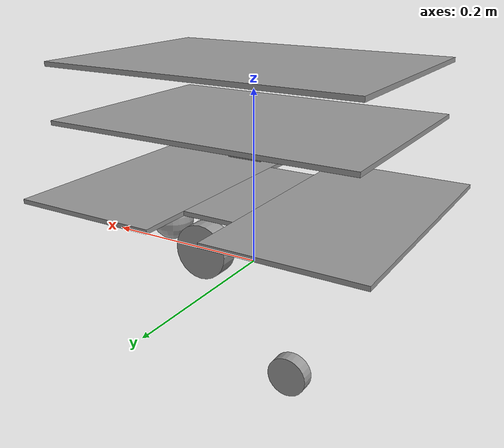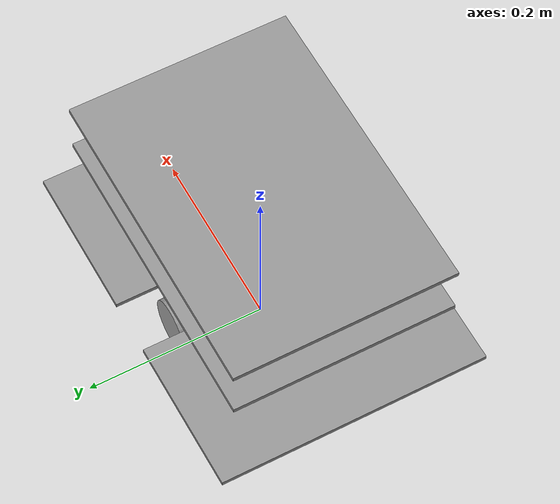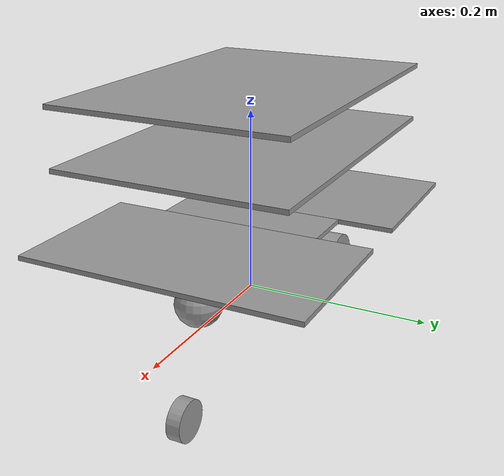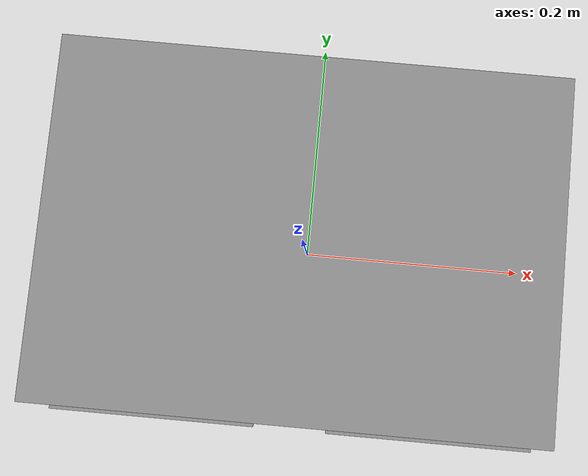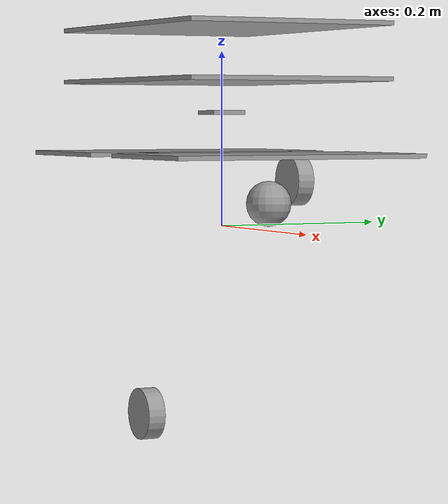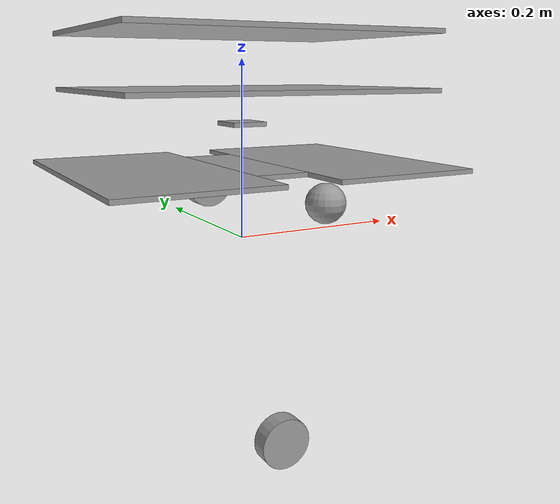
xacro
<?xml version="1.0"?>
<robot name="robot302" xmlns:xacro="http://www.ros.org/wiki/xacro">

  <gazebo reference="base_link">
    <material>Gazebo/Gray</material>
  </gazebo>
  <gazebo reference="left_wheel">
    <material>Gazebo/Black</material>
  </gazebo>
  <gazebo reference="right_wheel">
    <material>Gazebo/Black</material>
  </gazebo>

  <!-- PARAMETERS -->
  <xacro:property name="base_to_footprint" value="0.08"/>
  <xacro:property name="plate_thickness" value="0.005"/>

  <xacro:property name="wheel_radius" value="0.0290"/>
  <xacro:property name="wheel_width" value="0.02"/>
  <xacro:property name="wheel_separation" value="0.19"/>

  <xacro:property name="caster_radius" value="0.025"/>

  <!-- MATERIAL -->
  <material name="gray">
    <color rgba="0.6 0.6 0.6 1.0"/>
  </material>

  <!-- BASE FOOTPRINT -->
  <link name="base_footprint"/>

  <joint name="base_footprint_joint" type="fixed">
    <parent link="base_footprint"/>
    <child link="base_link"/>
    <origin xyz="0 0 ${base_to_footprint}"/>
  </joint>

  <!-- BASE LINK (LEVEL 1) -->
  <link name="base_link">

    <!-- Visual -->
    <visual>
      <origin xyz="-0.115 0 ${plate_thickness/2}"/>
      <geometry><box size="0.17 0.30 ${plate_thickness}"/></geometry>
      <material name="gray"/>
    </visual>
    <visual>
      <origin xyz="0 0 ${plate_thickness/2}"/>
      <geometry><box size="0.06 0.18 ${plate_thickness}"/></geometry>
      <material name="gray"/>
    </visual>
    <visual>
      <origin xyz="0.115 0 ${plate_thickness/2}"/>
      <geometry><box size="0.17 0.30 ${plate_thickness}"/></geometry>
      <material name="gray"/>
    </visual>

    <!-- Collision -->
    <collision>
      <origin xyz="-0.115 0 ${plate_thickness/2}"/>
      <geometry>
        <box size="0.17 0.30 ${plate_thickness}"/>
      </geometry>
    </collision>

    <collision>
      <origin xyz="0 0 ${plate_thickness/2}"/>
      <geometry>
        <box size="0.06 0.18 ${plate_thickness}"/>
      </geometry>
    </collision>

    <collision>
      <origin xyz="0.115 0 ${plate_thickness/2}"/>
      <geometry>
        <box size="0.17 0.30 ${plate_thickness}"/>
      </geometry>
    </collision>

    <!-- Inertia -->
    <inertial>
      <origin xyz="0 0 0.02"/> <mass value="6.0"/>
      <inertia ixx="0.045" iyy="0.061" izz="0.114" ixy="0" ixz="0" iyz="0"/>
    </inertial>

  </link>

  <!-- LEVEL 2 PLATE -->
  <link name="plate_level_2">
    <visual>
      <origin xyz="0 0 ${plate_thickness/2}"/>
      <geometry><box size="0.349 0.246 ${plate_thickness}"/></geometry>
      <material name="gray"/>
    </visual>

    <collision>
      <origin xyz="0 0 ${plate_thickness/2}"/>
      <geometry>
        <box size="0.349 0.246 ${plate_thickness}"/>
      </geometry>
    </collision>

    <inertial>
      <origin xyz="0 0 0.0025"/>
      <mass value="1.5"/>
      <inertia
        ixx="0.0076"
        iyy="0.0153"
        izz="0.0265"
        ixy="0"
        ixz="0"
        iyz="0"/>
    </inertial>
  </link>

  <joint name="plate_level_2_joint" type="fixed">
    <parent link="base_link"/>
    <child link="plate_level_2"/>
    <origin xyz="0 0 0.084"/>
  </joint>

  <!-- LEVEL 3 PLATE -->
  <link name="plate_level_3">
    <visual>
      <origin xyz="0 0 ${plate_thickness/2}"/>
      <geometry><box size="0.349 0.246 ${plate_thickness}"/></geometry>
      <material name="gray"/>
    </visual>

    <collision>
      <origin xyz="0 0 ${plate_thickness/2}"/>
      <geometry>
        <box size="0.349 0.246 ${plate_thickness}"/>
      </geometry>
    </collision>

    <inertial>
      <origin xyz="0 0 0.0025"/>
      <mass value="0.8"/>
      <inertia
        ixx="0.0041"
        iyy="0.0082"
        izz="0.0141"
        ixy="0"
        ixz="0"
        iyz="0"/>
    </inertial>
  </link>

  <joint name="plate_level_3_joint" type="fixed">
    <parent link="base_link"/>
    <child link="plate_level_3"/>
    <origin xyz="0 0 0.145"/>
  </joint>

  <!-- LEFT WHEEL -->
  <link name="left_wheel">
    <visual>
      <origin rpy="1.5708 0 0"/>
      <geometry><cylinder radius="${wheel_radius}" length="${wheel_width}"/></geometry>
      <material name="gray"/>
    </visual>

    <collision>
      <origin rpy="1.5708 0 0"/>
      <geometry>
        <cylinder radius="${wheel_radius}" length="${wheel_width}"/>
      </geometry>
    </collision>

    <inertial>
      <origin xyz="0 0 0"/>
      <mass value="0.6"/>
      <inertia
        ixx="0.00030"
        iyy="0.00030"
        izz="0.00042"
        ixy="0"
        ixz="0"
        iyz="0"/>
    </inertial>
  </link>

  <joint name="left_wheel_joint" type="continuous">
    <parent link="base_link"/>
    <child link="left_wheel"/>
    <origin xyz="0 ${wheel_separation/2} -0.0290"/>
    <axis xyz="0 1 0"/>
    <dynamics damping="1.5" friction="0.1"/>
  </joint>

  <!-- RIGHT WHEEL -->
  <link name="right_wheel">
    <visual>
      <origin rpy="1.5708 0 0"/>
      <geometry><cylinder radius="${wheel_radius}" length="${wheel_width}"/></geometry>
      <material name="gray"/>
    </visual>

    <collision>
      <origin rpy="1.5708 0 0"/>
      <geometry>
        <cylinder radius="${wheel_radius}" length="${wheel_width}"/>
      </geometry>
    </collision>

    <inertial>
      <origin xyz="0 0 0"/>
      <mass value="0.6"/>
      <inertia
        ixx="0.00030"
        iyy="0.00030"
        izz="0.00042"
        ixy="0"
        ixz="0"
        iyz="0"/>
    </inertial>
  </link>

  <joint name="right_wheel_joint" type="continuous">
    <parent link="base_link"/>
    <child link="right_wheel"/>
    <origin xyz="0 -${wheel_separation/2} -0.290"/>
    <axis xyz="0 1 0"/>
    <dynamics damping="1.5" friction="0.1"/>
  </joint>

  <!-- Gazebo properties: LEFT WHEEL -->
  <gazebo reference="left_wheel">
    <mu1>1.0</mu1>
    <mu2>1.0</mu2>
  </gazebo>

  <!-- Gazebo properties: RIGHT WHEEL -->
  <gazebo reference="right_wheel">
    <mu1>1.0</mu1>
    <mu2>1.0</mu2>
  </gazebo>

  <!-- CASTER WHEEL -->
  <link name="caster_wheel">
    <visual>
      <geometry><sphere radius="${caster_radius}"/></geometry>
      <material name="gray"/>
    </visual>

    <collision>
      <geometry>
        <sphere radius="${caster_radius}"/>
      </geometry>
    </collision>

    <inertial>
      <origin xyz="0 0 0"/>
      <mass value="0.2"/>
      <inertia
        ixx="0.000032"
        iyy="0.000032"
        izz="0.000032"
        ixy="0"
        ixz="0"
        iyz="0"/>
    </inertial>
  </link>

  <joint name="caster_joint" type="fixed">
    <parent link="base_link"/>
    <child link="caster_wheel"/>
    <origin xyz="0.115 0 -0.050"/>
  </joint>

  <!-- IMU -->
  <link name="imu_link">
    <visual>
      <geometry><box size="0.04 0.04 ${plate_thickness}"/></geometry>
      <material name="gray"/>
    </visual>

    <collision>
      <geometry>
        <box size="0.04 0.04 ${plate_thickness}"/>
      </geometry>
    </collision>

    <!-- kecil → mass kecil, inertia kecil -->
    <inertial>
      <origin xyz="0 0 0.0025"/>
      <mass value="0.05"/>
      <inertia
        ixx="0.00001"
        iyy="0.00001"
        izz="0.00001"
        ixy="0"
        ixz="0"
        iyz="0"/>
    </inertial>
  </link>

  <joint name="imu_joint" type="fixed">
    <parent link="base_link"/>
    <child link="imu_link"/>
    <origin xyz="0 0 0.05"/>
  </joint>

  <!-- LASER FRAME -->
  <link name="laser"/>

  <joint name="laser_joint" type="fixed">
    <parent link="base_link"/>
    <child link="laser"/>
    <origin xyz="0 0 0.19"/>
  </joint>

  <!-- ROS2 CONTROL (SIMULATION ONLY) -->
  <gazebo>
    <plugin name="robot302_drive" filename="libgazebo_ros_diff_drive.so">
      <left_joint>left_wheel_joint</left_joint>
      <right_joint>right_wheel_joint</right_joint>
      <wheel_separation>0.19</wheel_separation>
      <wheel_radius>0.0290</wheel_radius>

      <max_wheel_torque>20</max_wheel_torque>
      <max_wheel_acceleration>1.0</max_wheel_acceleration>

      <odometry_frame>odom</odometry_frame>
      <robot_base_frame>base_footprint</robot_base_frame>
      <publish_odom>true</publish_odom>
      <publish_odom_tf>true</publish_odom_tf>
      <publish_wheel_tf>false</publish_wheel_tf>
      <update_rate>50</update_rate>
      <command_topic>cmd_vel</command_topic>
    </plugin>
  </gazebo>

  <!-- GAZEBO LIDAR -->
  <gazebo reference="laser">
    <sensor type="ray" name="lidar">
      <pose>0 0 0 0 0 0</pose>
      <visualize>true</visualize> <update_rate>10</update_rate>
      <ray>
        <scan>
          <horizontal>
            <samples>360</samples>
            <min_angle>-3.14159</min_angle>
            <max_angle>3.14159</max_angle>
          </horizontal>
        </scan>
        <range>
          <min>0.12</min>
          <max>12.0</max>
        </range>
      </ray>
      <plugin name="gazebo_laser" filename="libgazebo_ros_ray_sensor.so">
        <ros>
          <remapping>~/out:=scan</remapping> </ros>
        <output_type>sensor_msgs/LaserScan</output_type>
        <frame_name>laser</frame_name>
      </plugin>
    </sensor>
  </gazebo>

  <link name="weight_ballast">
    <inertial>
      <origin xyz="0 0 0"/>
      <mass value="0.4"/>
      <inertia
        ixx="0.0005"
        iyy="0.0005"
        izz="0.0005"
        ixy="0"
        ixz="0"
        iyz="0"/>
    </inertial>
  </link>

  <joint name="weight_ballast_joint" type="fixed">
    <parent link="base_link"/>
    <child link="weight_ballast"/>
    <origin xyz="0.10 0 -0.03"/>
  </joint>

  <gazebo reference="caster_wheel">
    <mu1>0.0</mu1>
    <mu2>0.0</mu2>
  </gazebo>

  <!-- IMU RAW-->
  <gazebo reference="imu_link">
    <gravity>true</gravity>
    <sensor name="imu_sensor" type="imu">
      <always_on>true</always_on>
      <update_rate>50</update_rate>
      <visualize>true</visualize>
      <plugin filename="libgazebo_ros_imu_sensor.so" name="imu_plugin">
        <ros>
          <remapping>~/out:=imu/data_raw</remapping>
        </ros>
        <initial_orientation_as_reference>false</initial_orientation_as_reference>
        <frame_name>imu_link</frame_name>
      </plugin>
    </sensor>
  </gazebo>
</robot>
